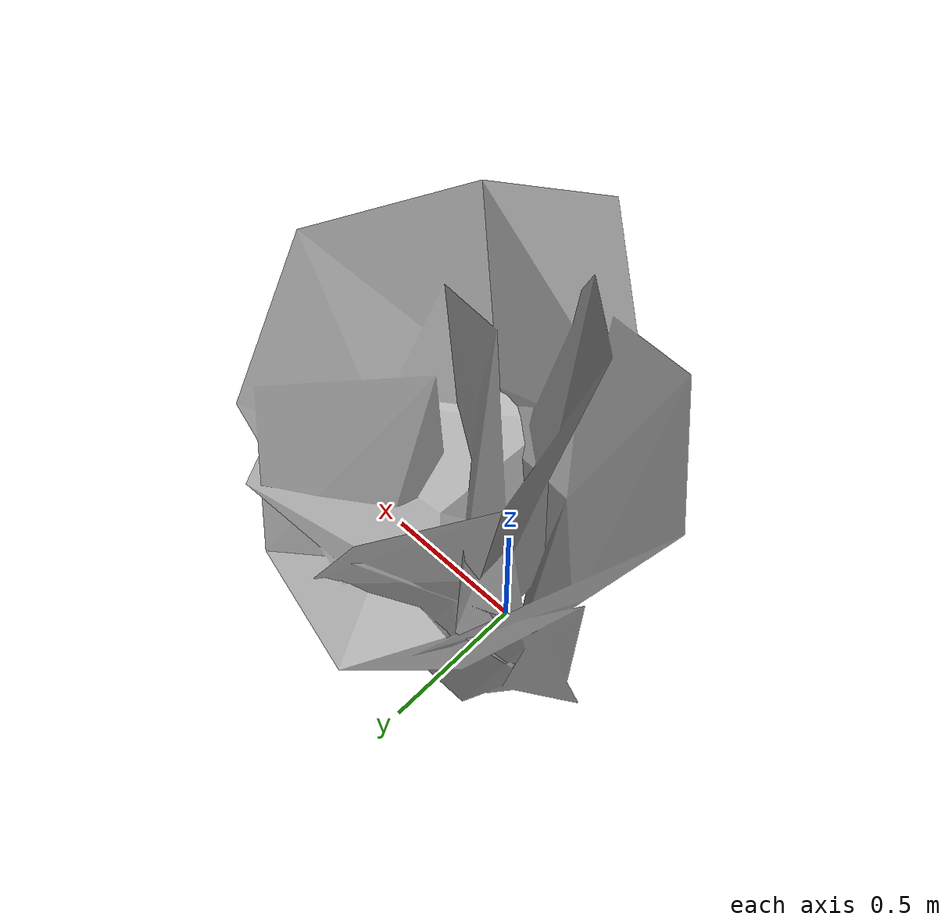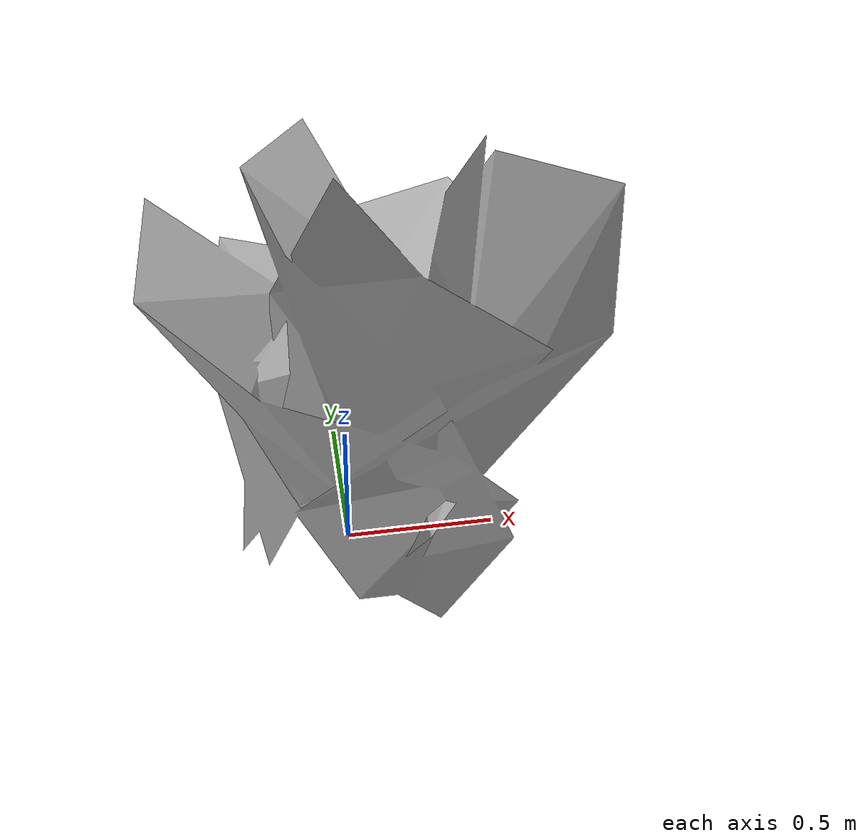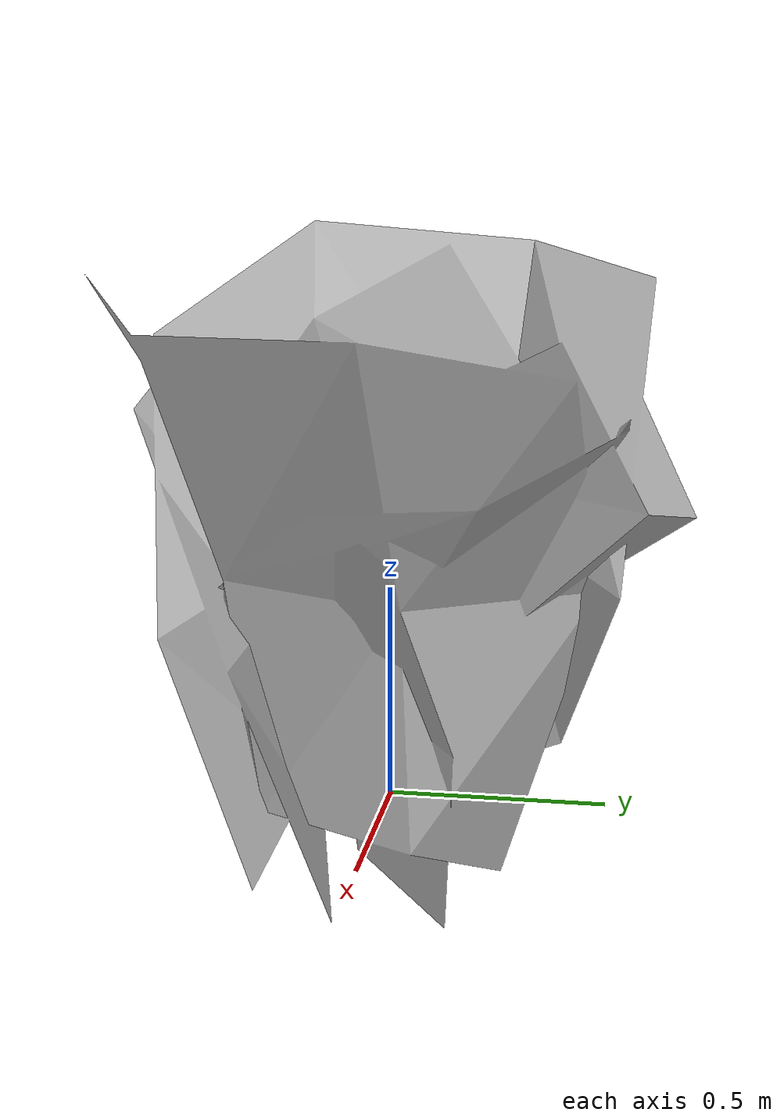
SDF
<?xml version="1.0" ?>
<sdf version="1.6">
  <model name="plant">
    <static>true</static>
    <link name="link">
      <collision name="collision">
        <geometry>
          <mesh>
            <uri>model://plant/meshes/plant.dae</uri>
          </mesh>
        </geometry>
      </collision>
      <visual name="visual">
        <geometry>
          <mesh>
            <uri>model://plant/meshes/plant.dae</uri>
          </mesh>
        </geometry>
        <material>
          <script>
            <uri>model://plant/materials/scripts/</uri>
            <uri>model://plant/materials/textures/</uri>
            <name>Plant/Leaves</name>
          </script>
        </material>
      </visual>
    </link>
  </model>
</sdf>
